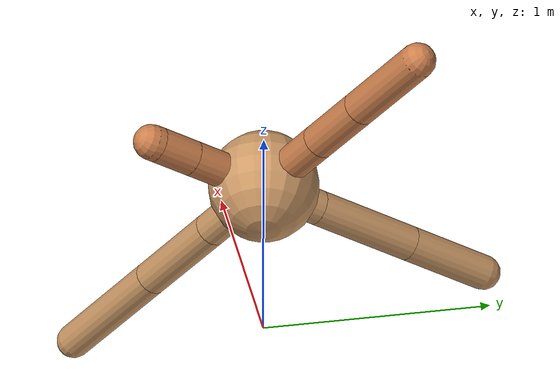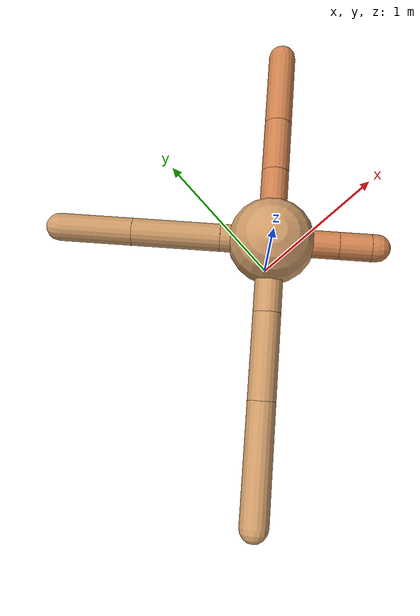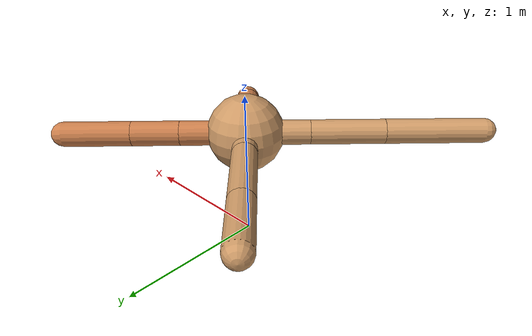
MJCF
<mujoco model="ant">
  <compiler angle="degree" coordinate="local" inertiafromgeom="true" />
  <option integrator="RK4" timestep="0.01" />
  <custom>
    <numeric data="0.0 0.0 0.55 1.0 0.0 0.0 0.0 0.0 1.0 0.0 -1.0 0.0 -1.0 0.0 1.0" name="init_qpos" />
  </custom>
  <default>
    <joint armature="1" damping="1" limited="true" />
    <geom conaffinity="0" condim="3" density="5.0" friction="1.5 0.1 0.1" margin="0.01" rgba="0.8 0.6 0.4 1" />
  </default>
  <worldbody>
    <body name="torso" pos="0 0 0.75">
      <geom name="torso_geom" pos="0 0 0" size="0.25" type="sphere" />

      <body name="front_left_leg" pos="0 0 0">
        <geom fromto="0.0 0.0 0.0 0.299 0.299 0.0" name="aux_1_geom" rgba=".8 .5 .3 1" size="0.08" type="capsule" />
        <body name="aux_1" pos="0.299 0.299 0.0">
          <joint axis="0 0 1" name="hip_1" pos="0.0 0.0 0.0" range="-40 40" type="hinge" />
          <geom fromto="0.0 0.0 0.0 0.218 0.218 0.0" name="left_leg_geom" rgba=".8 .5 .3 1" size="0.08" type="capsule" />
          <body name="front_left_foot" pos="0.218 0.218 0.0">
            <joint axis="-1 1 0" name="ankle_1" pos="0.0 0.0 0.0" range="30 100" type="hinge" />
            <geom fromto="0.0 0.0 0.0 0.307 0.307 0.0" name="left_ankle_geom" rgba=".8 .5 .3 1" size="0.08" type="capsule" />
          </body>
        </body>
      </body>
      <body name="front_right_leg" pos="0 0 0">
        <geom fromto="0.0 0.0 0.0 -0.207 0.207 0.0" name="aux_2_geom" size="0.08" type="capsule" />
        <body name="aux_2" pos="-0.207 0.207 0.0">
          <joint axis="0 0 1" name="hip_2" pos="0.0 0.0 0.0" range="-40 40" type="hinge" />
          <geom fromto="0.0 0.0 0.0 -0.356 0.356 0.0" name="right_leg_geom" size="0.08" type="capsule" />
          <body name="front_right_foot" pos="-0.356 0.356 0.0">
            <joint axis="1 1 0" name="ankle_2" pos="0.0 0.0 0.0" range="-100 -30" type="hinge" />
            <geom fromto="0.0 0.0 0.0 -0.296 0.296 0.0" name="right_ankle_geom" size="0.08" type="capsule" />
          </body>
        </body>
      </body>
      <body name="left_back_leg" pos="0 0 0">
        <geom fromto="0.0 0.0 0.0 -0.295 -0.295 0.0" name="aux_3_geom" size="0.08" type="capsule" />
        <body name="aux_3" pos="-0.295 -0.295 0.0">
          <joint axis="0 0 1" name="hip_3" pos="0.0 0.0 0.0" range="-40 40" type="hinge" />
          <geom fromto="0.0 0.0 0.0 -0.342 -0.342 0.0" name="back_leg_geom" size="0.08" type="capsule" />
          <body name="left_back_foot" pos="-0.342 -0.342 0.0">
            <joint axis="-1 1 0" name="ankle_3" pos="0.0 0.0 0.0" range="-100 -30" type="hinge" />
            <geom fromto="0.0 0.0 0.0 -0.456 -0.456 0.0" name="third_ankle_geom" size="0.08" type="capsule" />
          </body>
        </body>
      </body>
      <body name="right_back_leg" pos="0 0 0">
        <geom fromto="0.0 0.0 0.0 0.272 -0.272 0.0" name="aux_4_geom" rgba=".8 .5 .3 1" size="0.08" type="capsule" />
        <body name="aux_4" pos="0.272 -0.272 0.0">
          <joint axis="0 0 1" name="hip_4" pos="0.0 0.0 0.0" range="-40 40" type="hinge" />
          <geom fromto="0.0 0.0 0.0 0.129 -0.129 0.0" name="rightback_leg_geom" rgba=".8 .5 .3 1" size="0.08" type="capsule" />
          <body name="right_back_foot" pos="0.129 -0.129 0.0">
            <joint axis="1 1 0" name="ankle_4" pos="0.0 0.0 0.0" range="30 100" type="hinge" />
            <geom fromto="0.0 0.0 0.0 0.0254 -0.0254 0.0" name="fourth_ankle_geom" rgba=".8 .5 .3 1" size="0.08" type="capsule" />
          </body>
        </body>
      </body>
    </body>
  </worldbody>
  <actuator>
    <motor ctrllimited="true" ctrlrange="-1.0 1.0" gear="150" joint="hip_4" />
    <motor ctrllimited="true" ctrlrange="-1.0 1.0" gear="150" joint="ankle_4" />
    <motor ctrllimited="true" ctrlrange="-1.0 1.0" gear="150" joint="hip_1" />
    <motor ctrllimited="true" ctrlrange="-1.0 1.0" gear="150" joint="ankle_1" />
    <motor ctrllimited="true" ctrlrange="-1.0 1.0" gear="150" joint="hip_2" />
    <motor ctrllimited="true" ctrlrange="-1.0 1.0" gear="150" joint="ankle_2" />
    <motor ctrllimited="true" ctrlrange="-1.0 1.0" gear="150" joint="hip_3" />
    <motor ctrllimited="true" ctrlrange="-1.0 1.0" gear="150" joint="ankle_3" />
  </actuator>
</mujoco>
